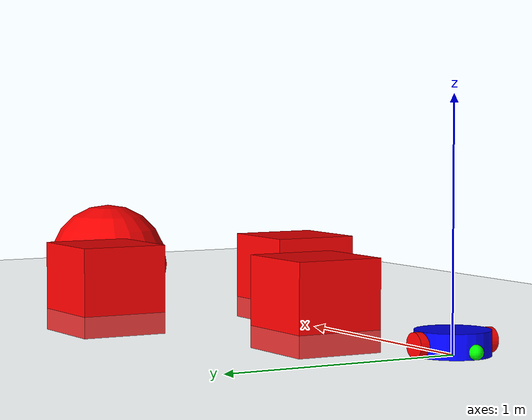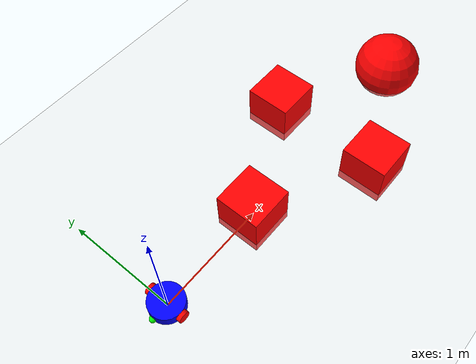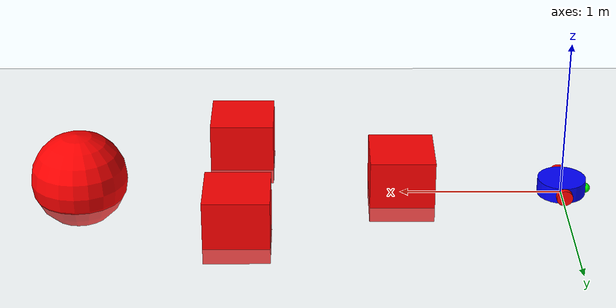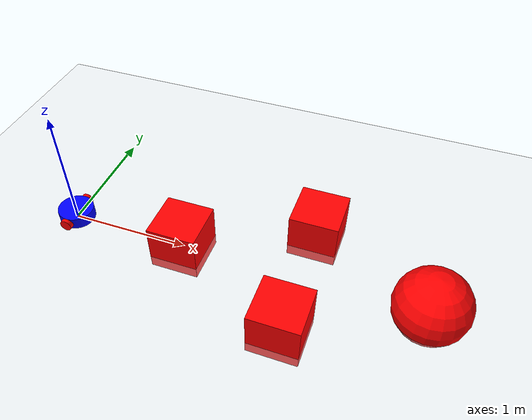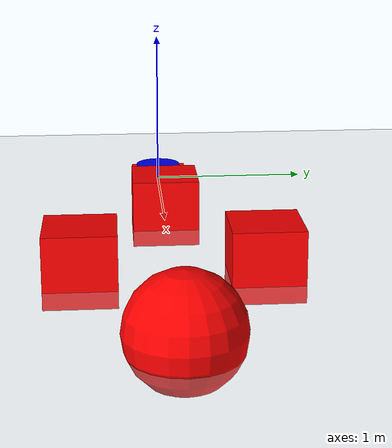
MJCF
<mujoco model="turtlebot">

  <option timestep="0.002" gravity="0 0 -9.81"/>

  <worldbody>
    <!-- Ground -->
    <geom type="plane" size="10 10 0.1"
          friction="2 0.1 0.1"
          rgba="0.9 0.9 0.9 1"/>

    <!-- OBSTACLES -->
    <body pos="1 0 0.1">
      <geom type="box" size="0.2 0.2 0.2" rgba="1 0 0 1"/>
    </body>

    <body pos="2 0.5 0.1">
      <geom type="box" size="0.2 0.2 0.2" rgba="1 0 0 1"/>
    </body>

    <body pos="2 -0.5 0.1">
      <geom type="box" size="0.2 0.2 0.2" rgba="1 0 0 1"/>
    </body>

    <body pos="3 0 0.1">
      <geom type="sphere" size="0.3 0.3 0.3" rgba="1 0 0 1"/>
    </body>

    <!-- ROBOT -->
    <body name="base" pos="0 0 0.05">
      <joint type="free"/>

      <!-- body -->
      <geom type="cylinder"
            size="0.15 0.05"
            mass="3"
            rgba="0 0 1 1"/>

      <!-- LEFT WHEEL -->
      <body pos="0 0.16 0">
        <joint name="left_joint"
               type="hinge"
               axis="0 1 0"
               damping="2"/>
        <geom type="cylinder"
              size="0.05 0.02"
              euler="90 0 0"
              friction="3 0.1 0.1"
              mass="0.3"
              rgba="1 0 0 1"/>
      </body>

      <!-- RIGHT WHEEL -->
      <body pos="0 -0.16 0">
        <joint name="right_joint"
               type="hinge"
               axis="0 1 0"
               damping="2"/>
        <geom type="cylinder"
              size="0.05 0.02"
              euler="90 0 0"
              friction="3 0.1 0.1"
              mass="0.3"
              rgba="1 0 0 1"/>
      </body>

      <!-- caster -->
      <body pos="-0.15 0 -0.02">
        <geom type="sphere"
              size="0.03"
              mass="0.1"
              friction="0.2 0.01 0.01"
              rgba="0 1 0 1"/>
      </body>

    </body>
  </worldbody>

  <actuator>
    <motor joint="left_joint" ctrlrange="-10 10"/>
    <motor joint="right_joint" ctrlrange="-10 10"/>
  </actuator>

</mujoco>
